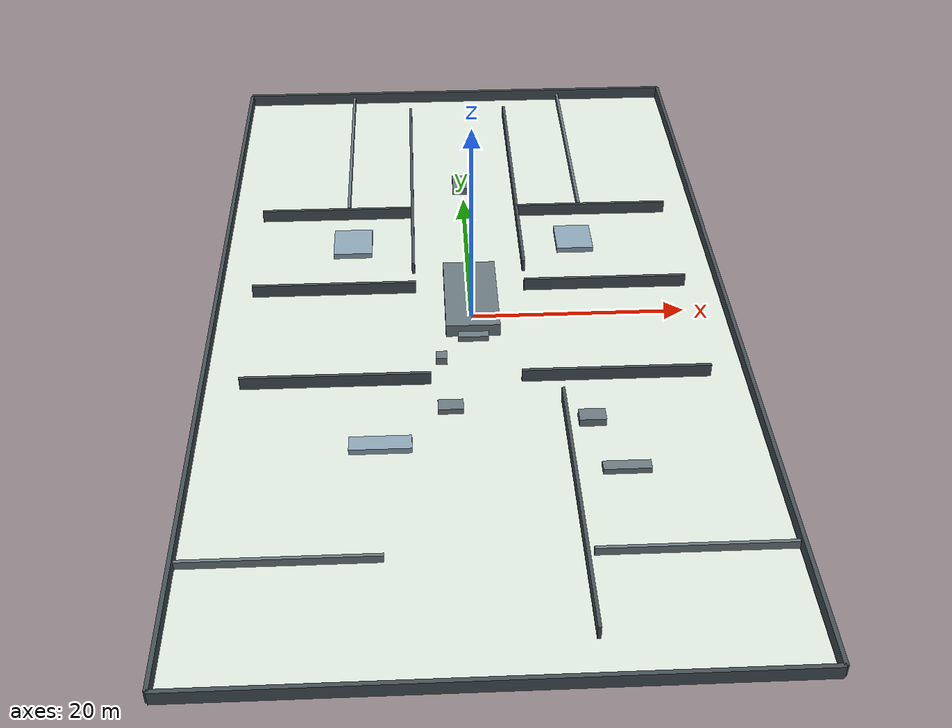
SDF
<?xml version="1.0" ?>
<sdf version="1.6">
  <world name="luxury_villa">
    <gravity>0 0 -9.8</gravity>
    <scene>
      <ambient>0.65 0.65 0.65 1</ambient>
      <background>0.78 0.84 0.88 1</background>
    </scene>
    <include>
      <uri>model://sun</uri>
    </include>
    <model name="luxury_villa_floor">
      <static>true</static>
      <pose>0.000 0.000 -0.025 0 0 0</pose>
      <link name="floor_link">
        <collision name="floor_collision">
          <geometry>
            <box><size>48.000 84.000 0.050</size></box>
          </geometry>
        </collision>
        <visual name="floor_visual">
          <geometry>
            <box><size>48.000 84.000 0.050</size></box>
          </geometry>
          <material><ambient>0.88 0.92 0.88 1</ambient><diffuse>0.88 0.92 0.88 1</diffuse></material>
        </visual>
      </link>
    </model>
    <model name="outer_north">
      <static>true</static>
      <pose>0.000 42.000 0.625 0 0 0</pose>
      <link name="outer_north_link">
        <collision name="outer_north_collision">
          <geometry>
            <box><size>48.000 0.350 1.250</size></box>
          </geometry>
        </collision>
        <visual name="outer_north_visual">
          <geometry>
            <box><size>48.000 0.350 1.250</size></box>
          </geometry>
          <material><ambient>0.27 0.32 0.34 1</ambient><diffuse>0.27 0.32 0.34 1</diffuse></material>
        </visual>
      </link>
    </model>
    <model name="outer_south">
      <static>true</static>
      <pose>0.000 -42.000 0.625 0 0 0</pose>
      <link name="outer_south_link">
        <collision name="outer_south_collision">
          <geometry>
            <box><size>48.000 0.350 1.250</size></box>
          </geometry>
        </collision>
        <visual name="outer_south_visual">
          <geometry>
            <box><size>48.000 0.350 1.250</size></box>
          </geometry>
          <material><ambient>0.27 0.32 0.34 1</ambient><diffuse>0.27 0.32 0.34 1</diffuse></material>
        </visual>
      </link>
    </model>
    <model name="outer_west">
      <static>true</static>
      <pose>-24.000 0.000 0.625 0 0 0</pose>
      <link name="outer_west_link">
        <collision name="outer_west_collision">
          <geometry>
            <box><size>0.350 84.000 1.250</size></box>
          </geometry>
        </collision>
        <visual name="outer_west_visual">
          <geometry>
            <box><size>0.350 84.000 1.250</size></box>
          </geometry>
          <material><ambient>0.27 0.32 0.34 1</ambient><diffuse>0.27 0.32 0.34 1</diffuse></material>
        </visual>
      </link>
    </model>
    <model name="outer_east">
      <static>true</static>
      <pose>24.000 0.000 0.625 0 0 0</pose>
      <link name="outer_east_link">
        <collision name="outer_east_collision">
          <geometry>
            <box><size>0.350 84.000 1.250</size></box>
          </geometry>
        </collision>
        <visual name="outer_east_visual">
          <geometry>
            <box><size>0.350 84.000 1.250</size></box>
          </geometry>
          <material><ambient>0.27 0.32 0.34 1</ambient><diffuse>0.27 0.32 0.34 1</diffuse></material>
        </visual>
      </link>
    </model>
    <model name="home_public_private_wall_w">
      <static>true</static>
      <pose>-13.000 4.000 0.625 0 0 0</pose>
      <link name="home_public_private_wall_w_link">
        <collision name="home_public_private_wall_w_collision">
          <geometry>
            <box><size>15.600 0.280 1.250</size></box>
          </geometry>
        </collision>
        <visual name="home_public_private_wall_w_visual">
          <geometry>
            <box><size>15.600 0.280 1.250</size></box>
          </geometry>
          <material><ambient>0.27 0.32 0.34 1</ambient><diffuse>0.27 0.32 0.34 1</diffuse></material>
        </visual>
      </link>
    </model>
    <model name="home_public_private_wall_e">
      <static>true</static>
      <pose>13.000 4.000 0.625 0 0 0</pose>
      <link name="home_public_private_wall_e_link">
        <collision name="home_public_private_wall_e_collision">
          <geometry>
            <box><size>15.600 0.280 1.250</size></box>
          </geometry>
        </collision>
        <visual name="home_public_private_wall_e_visual">
          <geometry>
            <box><size>15.600 0.280 1.250</size></box>
          </geometry>
          <material><ambient>0.27 0.32 0.34 1</ambient><diffuse>0.27 0.32 0.34 1</diffuse></material>
        </visual>
      </link>
    </model>
    <model name="home_left_private_wall">
      <static>true</static>
      <pose>-5.400 22.500 0.625 0 0 0</pose>
      <link name="home_left_private_wall_link">
        <collision name="home_left_private_wall_collision">
          <geometry>
            <box><size>0.280 31.000 1.250</size></box>
          </geometry>
        </collision>
        <visual name="home_left_private_wall_visual">
          <geometry>
            <box><size>0.280 31.000 1.250</size></box>
          </geometry>
          <material><ambient>0.27 0.32 0.34 1</ambient><diffuse>0.27 0.32 0.34 1</diffuse></material>
        </visual>
      </link>
    </model>
    <model name="home_right_private_wall">
      <static>true</static>
      <pose>5.400 22.500 0.625 0 0 0</pose>
      <link name="home_right_private_wall_link">
        <collision name="home_right_private_wall_collision">
          <geometry>
            <box><size>0.280 31.000 1.250</size></box>
          </geometry>
        </collision>
        <visual name="home_right_private_wall_visual">
          <geometry>
            <box><size>0.280 31.000 1.250</size></box>
          </geometry>
          <material><ambient>0.27 0.32 0.34 1</ambient><diffuse>0.27 0.32 0.34 1</diffuse></material>
        </visual>
      </link>
    </model>
    <model name="home_kitchen_side_wall">
      <static>true</static>
      <pose>7.400 -25.000 0.625 0 0 0</pose>
      <link name="home_kitchen_side_wall_link">
        <collision name="home_kitchen_side_wall_collision">
          <geometry>
            <box><size>0.280 26.000 1.250</size></box>
          </geometry>
        </collision>
        <visual name="home_kitchen_side_wall_visual">
          <geometry>
            <box><size>0.280 26.000 1.250</size></box>
          </geometry>
          <material><ambient>0.27 0.32 0.34 1</ambient><diffuse>0.27 0.32 0.34 1</diffuse></material>
        </visual>
      </link>
    </model>
    <model name="home_kitchen_dining_wall_w">
      <static>true</static>
      <pose>-12.400 -9.500 0.625 0 0 0</pose>
      <link name="home_kitchen_dining_wall_w_link">
        <collision name="home_kitchen_dining_wall_w_collision">
          <geometry>
            <box><size>16.800 0.280 1.250</size></box>
          </geometry>
        </collision>
        <visual name="home_kitchen_dining_wall_w_visual">
          <geometry>
            <box><size>16.800 0.280 1.250</size></box>
          </geometry>
          <material><ambient>0.27 0.32 0.34 1</ambient><diffuse>0.27 0.32 0.34 1</diffuse></material>
        </visual>
      </link>
    </model>
    <model name="home_kitchen_dining_wall_e">
      <static>true</static>
      <pose>12.400 -9.500 0.625 0 0 0</pose>
      <link name="home_kitchen_dining_wall_e_link">
        <collision name="home_kitchen_dining_wall_e_collision">
          <geometry>
            <box><size>16.800 0.280 1.250</size></box>
          </geometry>
        </collision>
        <visual name="home_kitchen_dining_wall_e_visual">
          <geometry>
            <box><size>16.800 0.280 1.250</size></box>
          </geometry>
          <material><ambient>0.27 0.32 0.34 1</ambient><diffuse>0.27 0.32 0.34 1</diffuse></material>
        </visual>
      </link>
    </model>
    <model name="home_bath_wall_w">
      <static>true</static>
      <pose>-13.100 17.000 0.625 0 0 0</pose>
      <link name="home_bath_wall_w_link">
        <collision name="home_bath_wall_w_collision">
          <geometry>
            <box><size>15.400 0.280 1.250</size></box>
          </geometry>
        </collision>
        <visual name="home_bath_wall_w_visual">
          <geometry>
            <box><size>15.400 0.280 1.250</size></box>
          </geometry>
          <material><ambient>0.27 0.32 0.34 1</ambient><diffuse>0.27 0.32 0.34 1</diffuse></material>
        </visual>
      </link>
    </model>
    <model name="home_bath_wall_e">
      <static>true</static>
      <pose>13.100 17.000 0.625 0 0 0</pose>
      <link name="home_bath_wall_e_link">
        <collision name="home_bath_wall_e_collision">
          <geometry>
            <box><size>15.400 0.280 1.250</size></box>
          </geometry>
        </collision>
        <visual name="home_bath_wall_e_visual">
          <geometry>
            <box><size>15.400 0.280 1.250</size></box>
          </geometry>
          <material><ambient>0.27 0.32 0.34 1</ambient><diffuse>0.27 0.32 0.34 1</diffuse></material>
        </visual>
      </link>
    </model>
    <model name="luxury_sofa">
      <static>true</static>
      <pose>-8.400 -17.500 0.275 0 0 0</pose>
      <link name="luxury_sofa_link">
        <collision name="luxury_sofa_collision">
          <geometry>
            <box><size>5.280 1.600 0.550</size></box>
          </geometry>
        </collision>
        <visual name="luxury_sofa_visual">
          <geometry>
            <box><size>5.280 1.600 0.550</size></box>
          </geometry>
          <material><ambient>0.55 0.65 0.72 1</ambient><diffuse>0.55 0.65 0.72 1</diffuse></material>
        </visual>
      </link>
    </model>
    <model name="luxury_coffee_table">
      <static>true</static>
      <pose>-2.400 -13.000 0.275 0 0 0</pose>
      <link name="luxury_coffee_table_link">
        <collision name="luxury_coffee_table_collision">
          <geometry>
            <box><size>2.200 1.300 0.550</size></box>
          </geometry>
        </collision>
        <visual name="luxury_coffee_table_visual">
          <geometry>
            <box><size>2.200 1.300 0.550</size></box>
          </geometry>
          <material><ambient>0.42 0.48 0.50 1</ambient><diffuse>0.42 0.48 0.50 1</diffuse></material>
        </visual>
      </link>
    </model>
    <model name="luxury_dining_table">
      <static>true</static>
      <pose>0.000 -3.000 0.275 0 0 0</pose>
      <link name="luxury_dining_table_link">
        <collision name="luxury_dining_table_collision">
          <geometry>
            <box><size>2.800 1.600 0.550</size></box>
          </geometry>
        </collision>
        <visual name="luxury_dining_table_visual">
          <geometry>
            <box><size>2.800 1.600 0.550</size></box>
          </geometry>
          <material><ambient>0.42 0.48 0.50 1</ambient><diffuse>0.42 0.48 0.50 1</diffuse></material>
        </visual>
      </link>
    </model>
    <model name="luxury_kitchen_counter">
      <static>true</static>
      <pose>11.760 -21.000 0.275 0 0 0</pose>
      <link name="luxury_kitchen_counter_link">
        <collision name="luxury_kitchen_counter_collision">
          <geometry>
            <box><size>4.000 1.000 0.550</size></box>
          </geometry>
        </collision>
        <visual name="luxury_kitchen_counter_visual">
          <geometry>
            <box><size>4.000 1.000 0.550</size></box>
          </geometry>
          <material><ambient>0.42 0.48 0.50 1</ambient><diffuse>0.42 0.48 0.50 1</diffuse></material>
        </visual>
      </link>
    </model>
    <model name="luxury_kitchen_island">
      <static>true</static>
      <pose>9.600 -15.000 0.375 0 0 0</pose>
      <link name="luxury_kitchen_island_link">
        <collision name="luxury_kitchen_island_collision">
          <geometry>
            <box><size>2.300 1.400 0.750</size></box>
          </geometry>
        </collision>
        <visual name="luxury_kitchen_island_visual">
          <geometry>
            <box><size>2.300 1.400 0.750</size></box>
          </geometry>
          <material><ambient>0.42 0.48 0.50 1</ambient><diffuse>0.42 0.48 0.50 1</diffuse></material>
        </visual>
      </link>
    </model>
    <model name="luxury_bed_left">
      <static>true</static>
      <pose>-11.400 12.000 0.275 0 0 0</pose>
      <link name="luxury_bed_left_link">
        <collision name="luxury_bed_left_collision">
          <geometry>
            <box><size>3.800 4.200 0.550</size></box>
          </geometry>
        </collision>
        <visual name="luxury_bed_left_visual">
          <geometry>
            <box><size>3.800 4.200 0.550</size></box>
          </geometry>
          <material><ambient>0.55 0.65 0.72 1</ambient><diffuse>0.55 0.65 0.72 1</diffuse></material>
        </visual>
      </link>
    </model>
    <model name="luxury_bed_right">
      <static>true</static>
      <pose>10.800 12.000 0.275 0 0 0</pose>
      <link name="luxury_bed_right_link">
        <collision name="luxury_bed_right_collision">
          <geometry>
            <box><size>3.600 4.000 0.550</size></box>
          </geometry>
        </collision>
        <visual name="luxury_bed_right_visual">
          <geometry>
            <box><size>3.600 4.000 0.550</size></box>
          </geometry>
          <material><ambient>0.55 0.65 0.72 1</ambient><diffuse>0.55 0.65 0.72 1</diffuse></material>
        </visual>
      </link>
    </model>
    <model name="luxury_bath_fixture">
      <static>true</static>
      <pose>0.000 22.500 0.375 0 0 0</pose>
      <link name="luxury_bath_fixture_link">
        <collision name="luxury_bath_fixture_collision">
          <geometry>
            <box><size>2.100 2.600 0.750</size></box>
          </geometry>
        </collision>
        <visual name="luxury_bath_fixture_visual">
          <geometry>
            <box><size>2.100 2.600 0.750</size></box>
          </geometry>
          <material><ambient>0.42 0.48 0.50 1</ambient><diffuse>0.42 0.48 0.50 1</diffuse></material>
        </visual>
      </link>
    </model>
    <model name="luxury_fragile_object">
      <static>true</static>
      <pose>-3.000 -6.500 0.375 0 0 0</pose>
      <link name="luxury_fragile_object_link">
        <collision name="luxury_fragile_object_collision">
          <geometry>
            <box><size>1.000 1.000 0.750</size></box>
          </geometry>
        </collision>
        <visual name="luxury_fragile_object_visual">
          <geometry>
            <box><size>1.000 1.000 0.750</size></box>
          </geometry>
          <material><ambient>0.42 0.48 0.50 1</ambient><diffuse>0.42 0.48 0.50 1</diffuse></material>
        </visual>
      </link>
    </model>
    <model name="luxury_low_stair_core">
      <static>true</static>
      <pose>0.000 2.000 0.625 0 0 0</pose>
      <link name="luxury_low_stair_core_link">
        <collision name="luxury_low_stair_core_collision">
          <geometry>
            <box><size>5.000 10.000 1.250</size></box>
          </geometry>
        </collision>
        <visual name="luxury_low_stair_core_visual">
          <geometry>
            <box><size>5.000 10.000 1.250</size></box>
          </geometry>
          <material><ambient>0.42 0.48 0.50 1</ambient><diffuse>0.42 0.48 0.50 1</diffuse></material>
        </visual>
      </link>
    </model>
    <model name="luxury_gallery_screen_w">
      <static>true</static>
      <pose>-16.000 -30.000 0.375 0 0 0</pose>
      <link name="luxury_gallery_screen_w_link">
        <collision name="luxury_gallery_screen_w_collision">
          <geometry>
            <box><size>16.000 0.280 0.750</size></box>
          </geometry>
        </collision>
        <visual name="luxury_gallery_screen_w_visual">
          <geometry>
            <box><size>16.000 0.280 0.750</size></box>
          </geometry>
          <material><ambient>0.42 0.48 0.50 1</ambient><diffuse>0.42 0.48 0.50 1</diffuse></material>
        </visual>
      </link>
    </model>
    <model name="luxury_gallery_screen_e">
      <static>true</static>
      <pose>16.000 -30.000 0.375 0 0 0</pose>
      <link name="luxury_gallery_screen_e_link">
        <collision name="luxury_gallery_screen_e_collision">
          <geometry>
            <box><size>16.000 0.280 0.750</size></box>
          </geometry>
        </collision>
        <visual name="luxury_gallery_screen_e_visual">
          <geometry>
            <box><size>16.000 0.280 0.750</size></box>
          </geometry>
          <material><ambient>0.42 0.48 0.50 1</ambient><diffuse>0.42 0.48 0.50 1</diffuse></material>
        </visual>
      </link>
    </model>
    <model name="luxury_west_suite_hint">
      <static>true</static>
      <pose>-12.000 30.000 0.375 0 0 0</pose>
      <link name="luxury_west_suite_hint_link">
        <collision name="luxury_west_suite_hint_collision">
          <geometry>
            <box><size>0.280 24.000 0.750</size></box>
          </geometry>
        </collision>
        <visual name="luxury_west_suite_hint_visual">
          <geometry>
            <box><size>0.280 24.000 0.750</size></box>
          </geometry>
          <material><ambient>0.42 0.48 0.50 1</ambient><diffuse>0.42 0.48 0.50 1</diffuse></material>
        </visual>
      </link>
    </model>
    <model name="luxury_east_suite_hint">
      <static>true</static>
      <pose>12.000 30.000 0.375 0 0 0</pose>
      <link name="luxury_east_suite_hint_link">
        <collision name="luxury_east_suite_hint_collision">
          <geometry>
            <box><size>0.280 24.000 0.750</size></box>
          </geometry>
        </collision>
        <visual name="luxury_east_suite_hint_visual">
          <geometry>
            <box><size>0.280 24.000 0.750</size></box>
          </geometry>
          <material><ambient>0.42 0.48 0.50 1</ambient><diffuse>0.42 0.48 0.50 1</diffuse></material>
        </visual>
      </link>
    </model>
  </world>
</sdf>
